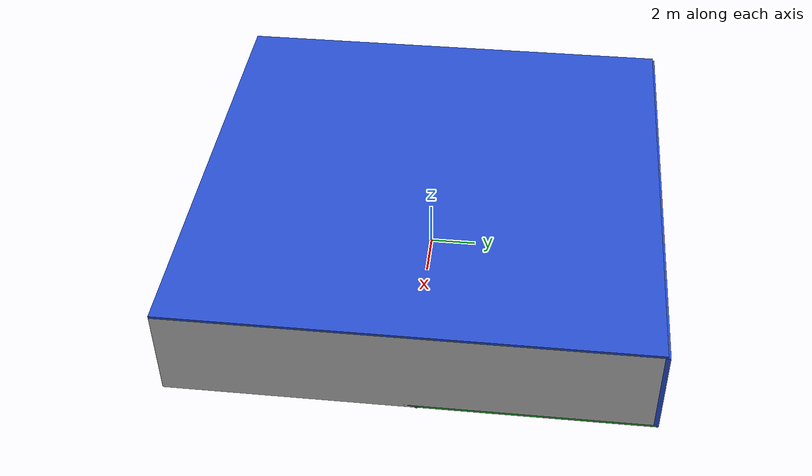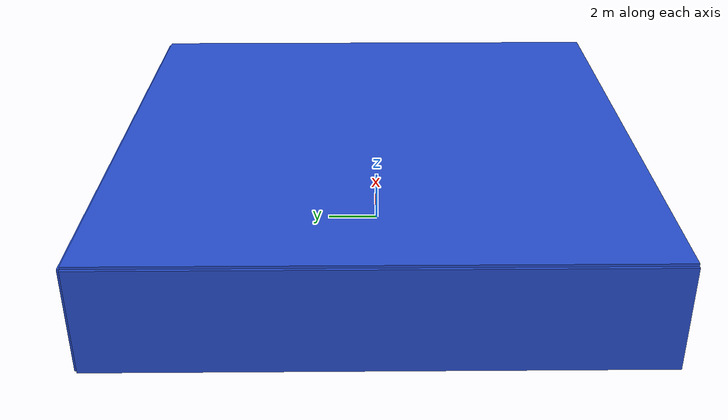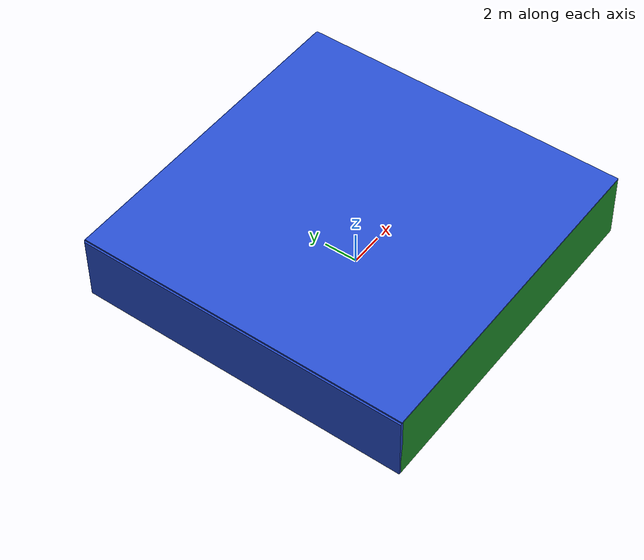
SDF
<sdf version="1.4">
 <world name="default">
  <physics type="ode">
   <max_step_size>0.001</max_step_size>
   <real_time_factor>1</real_time_factor>
   <real_time_update_rate>1000</real_time_update_rate>
   <gravity>0 0 -9.8</gravity>
  </physics>
  <scene><ambient>0.4 0.4 0.4 1</ambient><background>0.7 0.7 0.7 1</background><shadows>1</shadows></scene>
  <model name="Surrounding">
   <static>1</static>
   <link name="Ceiling">
    <collision name="Ceiling_Collision"><geometry><box><size>20 20 0.1</size></box></geometry></collision>
    <visual name="Ceiling_Visual">
     <geometry><box><size>20 20 0.1</size></box></geometry>
     <material>
      <script><uri>file://media/materials/scripts/gazebo.material</uri><name>Gazebo/BlueLaser</name></script>
     </material>
    </visual>
    <pose>0 0 4.05 0 0 0</pose>
   </link>
   <link name="Wall_South">
    <collision name="Wall_South_Collision">
     <geometry><box><size>20 0 4</size></box></geometry>
     <pose>0 0 2 0 -0 0</pose>
    </collision>
    <visual name="Wall_South_Visual">
     <pose>0 0 2 0 -0 0</pose>
     <geometry><box><size>20 0 4</size></box></geometry>
     <material>
      <script><uri>file://media/materials/scripts/gazebo.material</uri><name>Gazebo/GreenGlow</name></script>
     </material>
    </visual>
    <velocity_decay><linear>0</linear><angular>0</angular></velocity_decay>
    <pose>0 -10 0 0 -0 0</pose>
   </link>
   <link name="Wall_East">
    <collision name="Wall_21_Collision">
     <geometry><box><size>20 0 4</size></box></geometry>
     <pose>0 0 2 0 -0 0</pose>
    </collision>
    <visual name="Wall_21_Visual">
     <pose>0 0 2 0 -0 0</pose>
     <geometry><box><size>20 0 4</size></box></geometry>
     <material>
      <script><uri>file://media/materials/scripts/gazebo.material</uri><name>Gazebo/PioneerBody</name></script>
     </material>
    </visual>
    <velocity_decay><linear>0</linear><angular>0</angular></velocity_decay>
    <pose>10 0 0 0 -0 1.5708</pose>
   </link>
   <link name="Wall_North">
    <collision name="Wall_22_Collision">
     <geometry><box><size>20 0.2 4</size></box></geometry>
     <pose>0 0 2 0 -0 0</pose>
    </collision>
    <visual name="Wall_22_Visual">
     <pose>0 0 2 0 -0 0</pose>
     <geometry><box><size>20 0.2 4</size></box></geometry>
     <material>
      <script><uri>file://media/materials/scripts/gazebo.material</uri><name>Gazebo/Blue</name></script>
     </material>
    </visual>
    <velocity_decay><linear>0</linear><angular>0</angular></velocity_decay>
    <pose>0 10 0 0 -0 0</pose>
   </link>
   <link name="Wall_West">
    <collision name="Wall_23_Collision">
     <geometry><box><size>20 0.2 4</size></box></geometry>
     <pose>0 0 2 0 -0 0</pose>
    </collision>
    <visual name="Wall_23_Visual">
     <pose>0 0 2 0 -0 0</pose>
     <geometry><box><size>20 0.2 4</size></box></geometry>
     <material>
      <script><uri>file://media/materials/scripts/gazebo.material</uri><name>Gazebo/BlueLaser</name></script>
     </material>
    </visual>
    <velocity_decay><linear>0</linear><angular>0</angular></velocity_decay>
    <pose>-10 0 0 0 0 -1.5708</pose>
   </link>
   <link name="Ground_link">
    <collision name="collision">
     <pose>0 0 .05 0 -0 0</pose>
     <geometry><box><size>20 20 0.1</size></box></geometry>
    </collision>
    <visual name="visual">
     <pose>0 0 .05 0 -0 0</pose>
     <geometry><box><size>20 20 0.1</size></box></geometry>
     <material>
      <script><uri>file://media/materials/scripts/gazebo.material</uri><name>Gazebo/GreenGlow</name></script>
     </material>
    </visual>
   </link>
   <static>1</static>
  </model>
  <spherical_coordinates>
   <surface_model>EARTH_WGS84</surface_model>
   <latitude_deg>0</latitude_deg>
   <longitude_deg>0</longitude_deg>
   <elevation>0</elevation>
   <heading_deg>0</heading_deg>
  </spherical_coordinates>
  <light name="lightball_0" type="diffuse">
   <diffuse>0.8 0.8 0.8 1</diffuse>
   <specular>0.2 0.2 0.2 1</specular>
   <attenuation>
    <range>100</range>
    <constant>0.7</constant>
    <linear>0.01</linear>
    <quadratic>0.001</quadratic>
   </attenuation>
   <direction>-0.5 0.1 -0.9</direction>
   <pose>1.31497484476 5.88979294395 3.1621697084 0 0 0</pose>
  </light>
  <light name="lightball_1" type="diffuse">
   <diffuse>0.8 0.8 0.8 1</diffuse>
   <specular>0.2 0.2 0.2 1</specular>
   <attenuation>
    <range>100</range>
    <constant>0.7</constant>
    <linear>0.01</linear>
    <quadratic>0.001</quadratic>
   </attenuation>
   <direction>-0.5 0.1 -0.9</direction>
   <pose>1.67936300481 7.34555727066 0.817819713134 0 0 0</pose>
  </light>
  <light name="lightball_2" type="diffuse">
   <diffuse>0.8 0.8 0.8 1</diffuse>
   <specular>0.2 0.2 0.2 1</specular>
   <attenuation>
    <range>100</range>
    <constant>0.7</constant>
    <linear>0.01</linear>
    <quadratic>0.001</quadratic>
   </attenuation>
   <direction>-0.5 0.1 -0.9</direction>
   <pose>-7.49144776329 -8.82242016929 3.4773196666 0 0 0</pose>
  </light>
  <light name="lightball_3" type="diffuse">
   <diffuse>0.8 0.8 0.8 1</diffuse>
   <specular>0.2 0.2 0.2 1</specular>
   <attenuation>
    <range>100</range>
    <constant>0.7</constant>
    <linear>0.01</linear>
    <quadratic>0.001</quadratic>
   </attenuation>
   <direction>-0.5 0.1 -0.9</direction>
   <pose>-8.57685948517 9.02572169314 1.7844358073 0 0 0</pose>
  </light>
  <light name="lightball_4" type="diffuse">
   <diffuse>0.8 0.8 0.8 1</diffuse>
   <specular>0.2 0.2 0.2 1</specular>
   <attenuation>
    <range>100</range>
    <constant>0.7</constant>
    <linear>0.01</linear>
    <quadratic>0.001</quadratic>
   </attenuation>
   <direction>-0.5 0.1 -0.9</direction>
   <pose>0.942892612324 -6.52653204962 0.925833169168 0 0 0</pose>
  </light>
  <light name="lightball_5" type="diffuse">
   <diffuse>0.8 0.8 0.8 1</diffuse>
   <specular>0.2 0.2 0.2 1</specular>
   <attenuation>
    <range>100</range>
    <constant>0.7</constant>
    <linear>0.01</linear>
    <quadratic>0.001</quadratic>
   </attenuation>
   <direction>-0.5 0.1 -0.9</direction>
   <pose>-3.53086348672 -8.7703023897 3.00389865441 0 0 0</pose>
  </light>
  <light name="lightball_6" type="diffuse">
   <diffuse>0.8 0.8 0.8 1</diffuse>
   <specular>0.2 0.2 0.2 1</specular>
   <attenuation>
    <range>100</range>
    <constant>0.7</constant>
    <linear>0.01</linear>
    <quadratic>0.001</quadratic>
   </attenuation>
   <direction>-0.5 0.1 -0.9</direction>
   <pose>-6.55294446991 0.738927645391 2.55763757325 0 0 0</pose>
  </light>
  <light name="lightball_7" type="diffuse">
   <diffuse>0.8 0.8 0.8 1</diffuse>
   <specular>0.2 0.2 0.2 1</specular>
   <attenuation>
    <range>100</range>
    <constant>0.7</constant>
    <linear>0.01</linear>
    <quadratic>0.001</quadratic>
   </attenuation>
   <direction>-0.5 0.1 -0.9</direction>
   <pose>4.06878133977 -0.939613271052 1.76230702355 0 0 0</pose>
  </light>
  <light name="lightball_8" type="diffuse">
   <diffuse>0.8 0.8 0.8 1</diffuse>
   <specular>0.2 0.2 0.2 1</specular>
   <attenuation>
    <range>100</range>
    <constant>0.7</constant>
    <linear>0.01</linear>
    <quadratic>0.001</quadratic>
   </attenuation>
   <direction>-0.5 0.1 -0.9</direction>
   <pose>-7.38544056777 -0.198790134476 1.42631462715 0 0 0</pose>
  </light>
  <light name="lightball_9" type="diffuse">
   <diffuse>0.8 0.8 0.8 1</diffuse>
   <specular>0.2 0.2 0.2 1</specular>
   <attenuation>
    <range>100</range>
    <constant>0.7</constant>
    <linear>0.01</linear>
    <quadratic>0.001</quadratic>
   </attenuation>
   <direction>-0.5 0.1 -0.9</direction>
   <pose>5.55225024812 -5.2295102674 3.36028201937 0 0 0</pose>
  </light>
  <light name="lightball_10" type="diffuse">
   <diffuse>0.8 0.8 0.8 1</diffuse>
   <specular>0.2 0.2 0.2 1</specular>
   <attenuation>
    <range>100</range>
    <constant>0.7</constant>
    <linear>0.01</linear>
    <quadratic>0.001</quadratic>
   </attenuation>
   <direction>-0.5 0.1 -0.9</direction>
   <pose>-4.81958643334 2.10977477666 0.903013779241 0 0 0</pose>
  </light>
  <light name="lightball_11" type="diffuse">
   <diffuse>0.8 0.8 0.8 1</diffuse>
   <specular>0.2 0.2 0.2 1</specular>
   <attenuation>
    <range>100</range>
    <constant>0.7</constant>
    <linear>0.01</linear>
    <quadratic>0.001</quadratic>
   </attenuation>
   <direction>-0.5 0.1 -0.9</direction>
   <pose>8.7544054824 1.90446823503 3.1732546337 0 0 0</pose>
  </light>
  <light name="lightball_12" type="diffuse">
   <diffuse>0.8 0.8 0.8 1</diffuse>
   <specular>0.2 0.2 0.2 1</specular>
   <attenuation>
    <range>100</range>
    <constant>0.7</constant>
    <linear>0.01</linear>
    <quadratic>0.001</quadratic>
   </attenuation>
   <direction>-0.5 0.1 -0.9</direction>
   <pose>4.58598786802 4.2652544048 2.00838324141 0 0 0</pose>
  </light>
  <light name="lightball_13" type="diffuse">
   <diffuse>0.8 0.8 0.8 1</diffuse>
   <specular>0.2 0.2 0.2 1</specular>
   <attenuation>
    <range>100</range>
    <constant>0.7</constant>
    <linear>0.01</linear>
    <quadratic>0.001</quadratic>
   </attenuation>
   <direction>-0.5 0.1 -0.9</direction>
   <pose>2.75888648872 -5.06929805119 1.58364970383 0 0 0</pose>
  </light>
  <include>
   <uri>model://robocup_3Dsim_goal</uri>
   <pose>-7.92200480485 8.27091738261 0 0 0 1.63950838235</pose>
  </include>
  <include>
   <uri>model://textured_shapes</uri>
   <pose>-4.7528768526 3.51870748502 0 0 0 1.5195232792</pose>
  </include>
  <include>
   <uri>model://construction_cone</uri>
   <pose>1.85977439823 -7.92285190433 0 0 0 0.333494976725</pose>
  </include>
  <include>
   <uri>model://construction_cone</uri>
   <pose>2.16387428985 0.936291605835 0 0 0 0.0784930685675</pose>
  </include>
  <include>
   <uri>model://textured_shapes</uri>
   <pose>7.58339059035 0.64122806471 0 0 0 1.22520940366</pose>
  </include>
 </world>
</sdf>

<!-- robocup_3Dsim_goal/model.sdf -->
<sdf version="1.5">
  <model name="robocup_3d_goal">
    <static>true</static>
    <link name="left_post">
      <pose>0 1.05 0.45 0 0 0</pose>
      <collision name="collision">
        <geometry>
          <cylinder>
            <radius>0.05</radius>
            <length>0.9</length>
          </cylinder>
        </geometry>
      </collision>
      <visual name="visual">
        <geometry>
          <cylinder>
            <radius>0.05</radius>
            <length>0.9</length>
          </cylinder>
        </geometry>
        <material>
          <script>
            <uri>file://media/materials/scripts/gazebo.material</uri>
            <name>Gazebo/ZincYellow</name>
          </script>
        </material>
      </visual>
    </link>
    <link name="left_support_horiz_lower">
      <pose>0.30 1.05 0.01 0 0 0</pose>
      <collision name="collision">
        <geometry>
          <box>
            <size>0.50 0.02 0.02</size>
          </box>
        </geometry>
      </collision>
      <visual name="visual">
        <geometry>
          <box>
            <size>0.50 0.02 0.02</size>
          </box>
        </geometry>
        <material>
          <script>
            <uri>file://media/materials/scripts/gazebo.material</uri>
            <name>Gazebo/White</name>
          </script>
        </material>
      </visual>
    </link>
    <link name="left_support_horiz_upper">
      <pose>0.30 1.05 0.79 0 0 0</pose>
      <collision name="collision">
        <geometry>
          <box>
            <size>0.50 0.02 0.02</size>
          </box>
        </geometry>
      </collision>
      <visual name="visual">
        <geometry>
          <box>
            <size>0.50 0.02 0.02</size>
          </box>
        </geometry>
        <material>
          <script>
            <uri>file://media/materials/scripts/gazebo.material</uri>
            <name>Gazebo/White</name>
          </script>
        </material>
      </visual>
    </link>
    <link name="left_support_vertical">
      <pose>0.56 1.05 0.4 0 1.5708 0</pose>
      <collision name="collision">
        <geometry>
          <box>
            <size>0.80 0.02 0.02</size>
          </box>
        </geometry>
      </collision>
      <visual name="visual">
        <geometry>
          <box>
            <size>0.80 0.02 0.02</size>
          </box>
        </geometry>
        <material>
          <script>
            <uri>file://media/materials/scripts/gazebo.material</uri>
            <name>Gazebo/White</name>
          </script>
        </material>
      </visual>
    </link>
    <link name="right_support_horiz_lower">
      <pose>0.30 -1.05 0.01 0 0 0</pose>
      <collision name="collision">
        <geometry>
          <box>
            <size>0.50 0.02 0.02</size>
          </box>
        </geometry>
      </collision>
      <visual name="visual">
        <geometry>
          <box>
            <size>0.50 0.02 0.02</size>
          </box>
        </geometry>
        <material>
          <script>
            <uri>file://media/materials/scripts/gazebo.material</uri>
            <name>Gazebo/White</name>
          </script>
        </material>
      </visual>
    </link>
    <link name="right_support_horiz_upper">
      <pose>0.30 -1.05 0.79 0 0 0</pose>
      <collision name="collision">
        <geometry>
          <box>
            <size>0.50 0.02 0.02</size>
          </box>
        </geometry>
      </collision>
      <visual name="visual">
        <geometry>
          <box>
            <size>0.50 0.02 0.02</size>
          </box>
        </geometry>
        <material>
          <script>
            <uri>file://media/materials/scripts/gazebo.material</uri>
            <name>Gazebo/White</name>
          </script>
        </material>
      </visual>
    </link>
    <link name="right_support_vertical">
      <pose>0.56 -1.05 0.4 0 1.5708 0</pose>
      <collision name="collision">
        <geometry>
          <box>
            <size>0.80 0.02 0.02</size>
          </box>
        </geometry>
      </collision>
      <visual name="visual">
        <geometry>
          <box>
            <size>0.80 0.02 0.02</size>
          </box>
        </geometry>
        <material>
          <script>
            <uri>file://media/materials/scripts/gazebo.material</uri>
            <name>Gazebo/White</name>
          </script>
        </material>
      </visual>
    </link>
    <link name="center_support_horiz_lower">
      <pose>0.56 0 0.01 0 1.5708 0</pose>
      <collision name="collision">
        <geometry>
          <box>
            <size>0.02 2.08 0.02</size>
          </box>
        </geometry>
      </collision>
      <visual name="visual">
        <geometry>
          <box>
            <size>0.02 2.08 0.02</size>
          </box>
        </geometry>
        <material>
          <script>
            <uri>file://media/materials/scripts/gazebo.material</uri>
            <name>Gazebo/White</name>
          </script>
        </material>
      </visual>
    </link>
    <link name="center_support_horiz_upper">
      <pose>0.56 0 0.79 0 1.5708 0</pose>
      <collision name="collision">
        <geometry>
          <box>
            <size>0.02 2.08 0.02</size>
          </box>
        </geometry>
      </collision>
      <visual name="visual">
        <geometry>
          <box>
            <size>0.02 2.08 0.02</size>
          </box>
        </geometry>
        <material>
          <script>
            <uri>file://media/materials/scripts/gazebo.material</uri>
            <name>Gazebo/White</name>
          </script>
        </material>
      </visual>
    </link>
    <link name="right_post">
      <pose>0 -1.05 0.45 0 0 0</pose>
      <collision name="collision">
        <geometry>
          <cylinder>
            <radius>0.05</radius>
            <length>0.9</length>
          </cylinder>
        </geometry>
      </collision>
      <visual name="visual">
        <geometry>
          <cylinder>
            <radius>0.05</radius>
            <length>0.9</length>
          </cylinder>
        </geometry>
        <material>
          <script>
            <uri>file://media/materials/scripts/gazebo.material</uri>
            <name>Gazebo/ZincYellow</name>
          </script>
        </material>
      </visual>
    </link>
    <link name="crossbar">
      <pose>0 0 0.85 1.57 1.57 0</pose>
      <collision name="collision">
        <geometry>
          <cylinder>
            <radius>0.05</radius>
            <length>2.0</length>
          </cylinder>
        </geometry>
      </collision>
      <visual name="visual">
        <geometry>
          <cylinder>
            <radius>0.05</radius>
            <length>2.0</length>
          </cylinder>
        </geometry>
        <material>
          <script>
            <uri>file://media/materials/scripts/gazebo.material</uri>
            <name>Gazebo/ZincYellow</name>
          </script>
        </material>
      </visual>
    </link>
    <link name="center_net">
      <pose>0.56 0 0.40 0 0 0</pose>
      <collision name="collision">
        <geometry>
          <box>
            <size>0.01 2.1 0.80</size>
          </box>
        </geometry>
      </collision>
      <visual name="visual">
        <geometry>
          <box>
            <size>0.01 2.1 0.80</size>
          </box>
        </geometry>
        <material>
          <script>
            <uri>model://../model_source/models/robocup09_spl_field/materials/scripts/</uri>
            <uri>model://../model_source/models/robocup09_spl_field/materials/textures/</uri>
            <name>RoboCup/Net</name>
          </script>
        </material>
      </visual>
    </link>
    <link name="left_net">
      <pose>0.30 1.05 0.40 0 0 0</pose>
      <collision name="collision">
        <geometry>
          <box>
            <size>0.50 0.01 0.76</size>
          </box>
        </geometry>
      </collision>
      <visual name="visual">
        <geometry>
          <box>
            <size>0.50 0.01 0.76</size>
          </box>
        </geometry>
        <material>
          <script>
            <uri>model://../model_source/models/robocup09_spl_field/materials/scripts/</uri>
            <uri>model://../model_source/models/robocup09_spl_field/materials/textures/</uri>
            <name>RoboCup/Net</name>
          </script>
        </material>
      </visual>
    </link>
    <link name="right_net">
      <pose>0.30 -1.05 0.40 0 0 0</pose>
      <collision name="collision">
        <geometry>
          <box>
            <size>0.50 0.01 0.76</size>
          </box>
        </geometry>
      </collision>
      <visual name="visual">
        <geometry>
          <box>
            <size>0.50 0.01 0.76</size>
          </box>
        </geometry>
        <material>
          <script>
            <uri>model://../model_source/models/robocup09_spl_field/materials/scripts/</uri>
            <uri>model://../model_source/models/robocup09_spl_field/materials/textures/</uri>
            <name>RoboCup/Net</name>
          </script>
        </material>
      </visual>
    </link>
  </model>
</sdf>

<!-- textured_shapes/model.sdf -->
<sdf version="1.6">
  <model name="textured_shapes">
    <pose>0 0 0.5 0 0 0</pose>
    <link name="box">
      <pose>0 -1.5 0 0 0 0</pose>
      <collision name="collision">
        <geometry>
          <box>
            <size>1 1 1</size>
          </box>
        </geometry>
      </collision>
      <visual name="visual">
        <geometry>
          <box>
            <size>1 1 1</size>
          </box>
        </geometry>
        <material>
          <script>
            <uri>model://../model_source/models/textured_shapes/materials/scripts</uri>
            <uri>model://../model_source/models/textured_shapes/materials/textures</uri>
            <name>TexturedShape/Squares</name>
          </script>
        </material>
      </visual>
    </link>
    <link name="sphere">
      <collision name="collision">
        <geometry>
          <sphere>
            <radius>0.5</radius>
          </sphere>
        </geometry>
      </collision>
      <visual name="visual">
        <geometry>
          <sphere>
            <radius>0.5</radius>
          </sphere>
        </geometry>
        <material>
          <script>
            <uri>model://../model_source/models/textured_shapes/materials/scripts</uri>
            <uri>model://../model_source/models/textured_shapes/materials/textures</uri>
            <name>TexturedShape/Squares</name>
          </script>
        </material>
      </visual>
    </link>
    <link name="cylinder">
      <pose>0 1.5 0 0 0 0</pose>
      <collision name="collision">
        <geometry>
          <cylinder>
            <radius>0.5</radius>
            <length>1</length>
          </cylinder>
        </geometry>
      </collision>
      <visual name="visual">
        <geometry>
          <cylinder>
            <radius>0.5</radius>
            <length>1</length>
          </cylinder>
        </geometry>
        <material>
          <script>
            <uri>model://../model_source/models/textured_shapes/materials/scripts</uri>
            <uri>model://../model_source/models/textured_shapes/materials/textures</uri>
            <name>TexturedShape/Squares</name>
          </script>
        </material>
      </visual>
    </link>
  </model>
</sdf>

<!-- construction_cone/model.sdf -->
<sdf version="1.5">
  <model name="Construction Cone">
    <link name="link">
      <collision name="collision">
        <geometry>
          <mesh>
            <scale>10 10 10</scale>
            <uri>file://isr-testbed/construction_cone/meshes/construction_cone.dae</uri>
          </mesh>
        </geometry>
      </collision>
      <visual name="visual">
        <geometry>
          <mesh>
            <scale>10 10 10</scale>
            <uri>file://isr-testbed/construction_cone/meshes/construction_cone.dae</uri>
          </mesh>
        </geometry>
      </visual>
    </link>
  </model>
</sdf>
